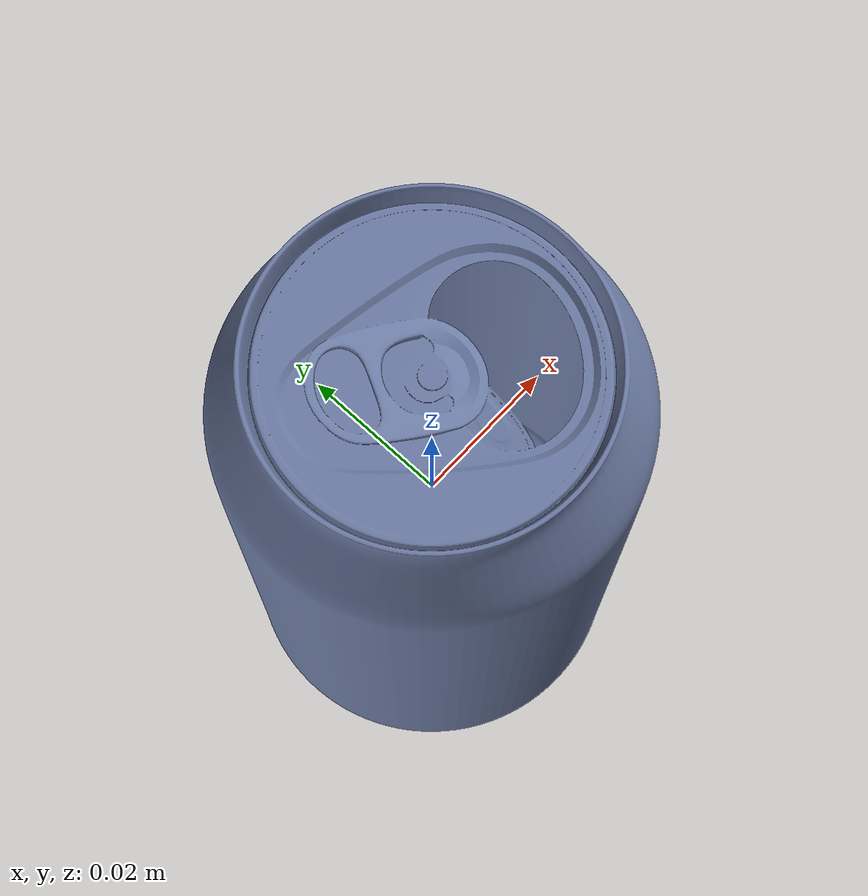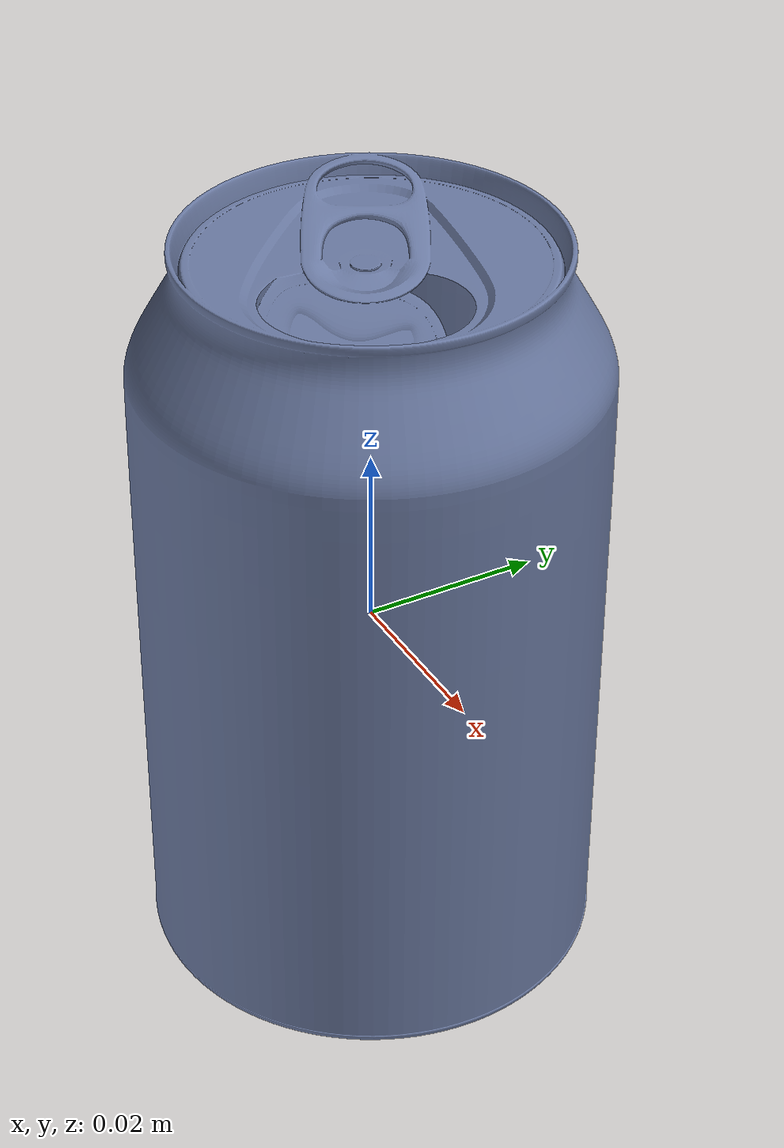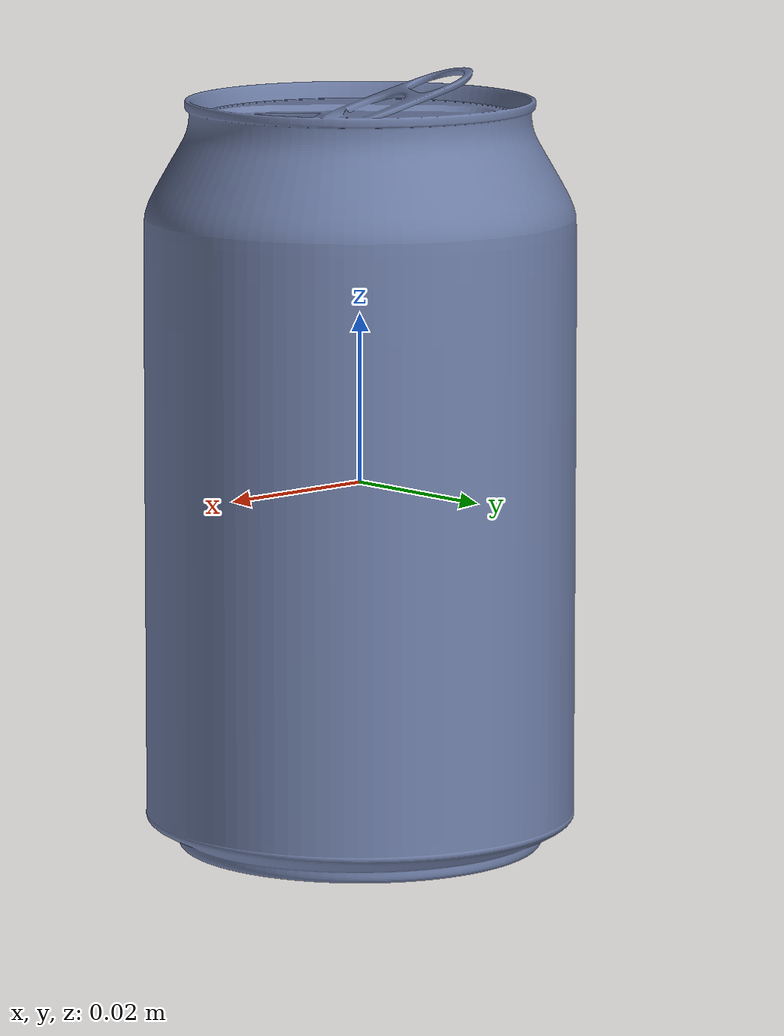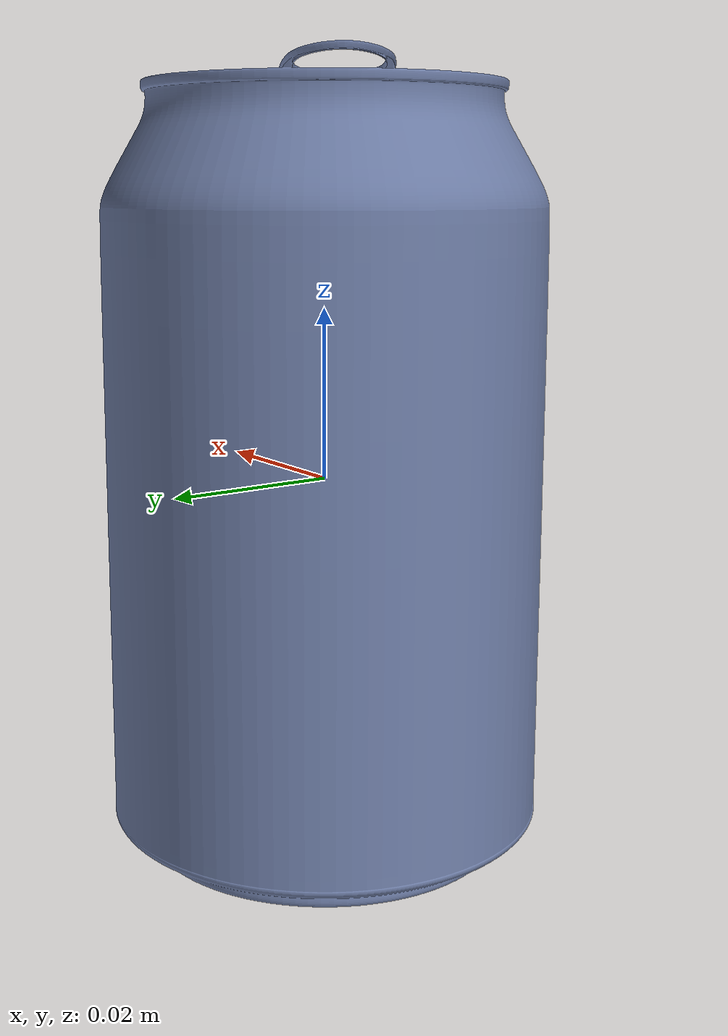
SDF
<?xml version="1.0" ?>
<sdf version="1.5">
  <model name="can">
    <static>false</static>
    <link name="can_link">
        <pose>0 0 0 0 0 0</pose>
        <collision name="can_collision">
         <geometry>
	            <box>
                    <size>.05 .05 .091</size>
                </box>
            </geometry>
          <surface>
            <friction>
              <ode>
                <mu>5</mu>
                <mu2>5</mu2>
              </ode>
            </friction>
          </surface>
        </collision>

      <visual name="can_mesh">
        <cast_shadows>false</cast_shadows>
        <geometry>
            <mesh>
                <uri>model://lc_can/meshes/can.dae</uri>
            </mesh>
        </geometry>
	    <material>
          <script>
            <uri>model://lc_can/materials/scripts</uri>
            <uri>model://lc_can/materials/textures</uri>
            <name>canMat/Diffuse</name>
          </script>
        </material>
      </visual>
    </link>
  </model>
</sdf>
